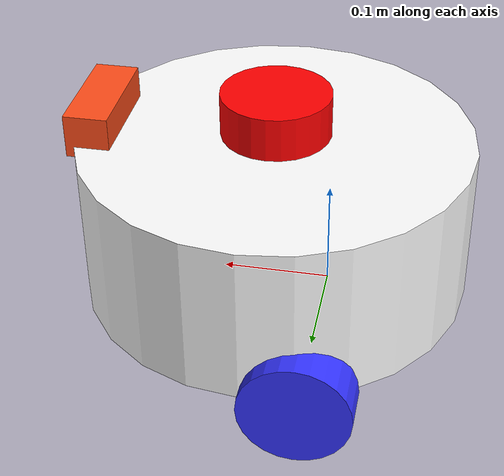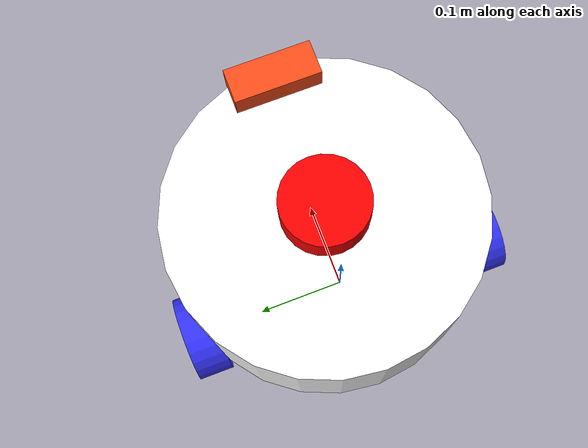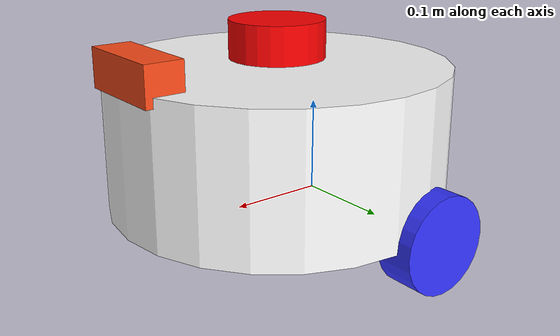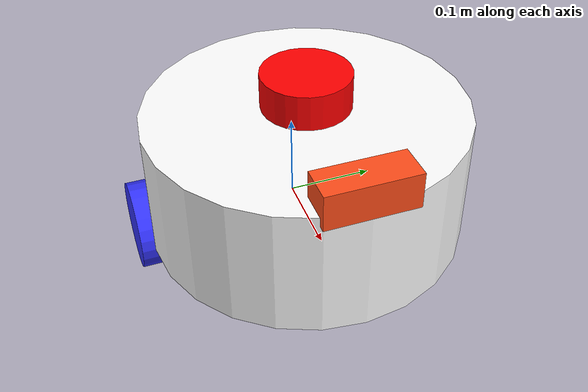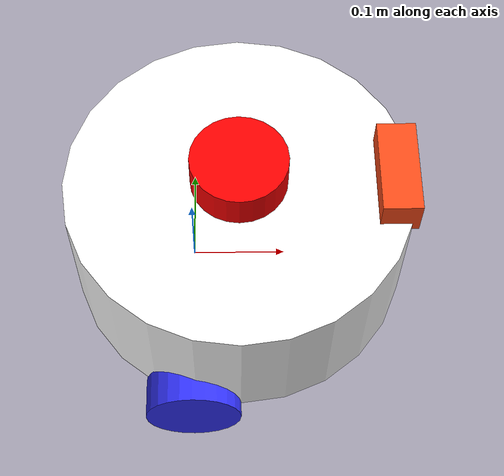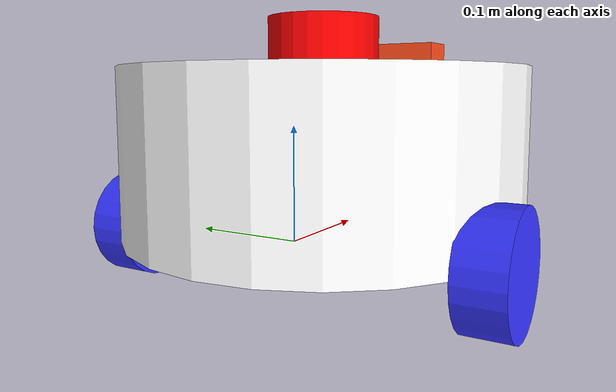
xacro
<?xml version="1.0"?>
<robot xmlns:xacro="http://www.ros.org/wiki/xacro"  name="robot">

    <xacro:include filename="robot_core.xacro" />
    <xacro:include filename="lidar.xacro" />
    <xacro:include filename="imu.xacro" />
    <xacro:include filename="ultrasonic.xacro" />

    <!-- Instantiate sensors that are defined as macros -->
    <!-- Front-facing ultrasonic (HC-SR04). Pose is relative to chassis. -->
    <xacro:ultrasonic_sensor parent_link="chassis" xyz="0.30 0 0.03" rpy="0 0 0" />

</robot>

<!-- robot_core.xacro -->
<robot xmlns:xacro="http://www.ros.org/wiki/xacro" >

    <xacro:include filename="inertial_macros.xacro"/>

    <material name="white">
        <color rgba="1 1 1 1" />
    </material>

    <material name="orange">
        <color rgba="1 0.3 0.1 1"/>
    </material>

    <material name="blue">
        <color rgba="0.2 0.2 1 1"/>
    </material>

    <material name="black">
        <color rgba="0 0 0 1"/>
    </material>

    <material name="red">
        <color rgba="1 0 0 1"/>
    </material>

    <!-- BASE LINK -->

    <link name="base_link">

    </link>

    <!-- CHASSIS LINK -->

    <joint name="chassis_joint" type="fixed">
        <parent link="base_link"/>
        <child link="chassis"/>
        <origin xyz="-0.1 0 0"/>
    </joint>

    <link name="chassis">
        <visual>
            <origin xyz="0.15 0 0.075" rpy="0 0 0"/>
            <geometry>
                <cylinder radius="0.18" length="0.15"/>
            </geometry>
            <material name="white"/>
        </visual>
        <collision>
            <origin xyz="0.15 0 0.075" rpy="0 0 0"/>
            <geometry>
                <cylinder radius="0.18" length="0.15"/>
            </geometry>
        </collision>
        <xacro:inertial_cylinder mass="0.5" length="0.15" radius="0.18">
            <origin xyz="0.15 0 0.075" rpy="0 0 0"/>
        </xacro:inertial_cylinder>
    </link>

    <!-- FRONT INDICATOR -->
    <joint name="front_indicator_joint" type="fixed">
        <parent link="chassis"/>
        <child link="front_indicator"/>
        <origin xyz="0.31 0 0.16" rpy="0 0 0"/>
    </joint>
    <link name="front_indicator">
        <visual>
            <geometry>
                <box size="0.04 0.1 0.04"/>
            </geometry>
            <material name="orange"/>
        </visual>
    </link>
    <gazebo reference="front_indicator">
        <material>Gazebo/Orange</material>
    </gazebo>

    <gazebo reference="chassis">
        <material>Gazebo/White</material>
    </gazebo>

    <!-- LEFT WHEEL LINK -->

    <joint name="left_wheel_joint" type="continuous">
        <parent link="base_link"/>
        <child link="left_wheel"/>
        <origin xyz="0 0.175 0" rpy="-${pi/2} 0 0" />
        <axis xyz="0 0 1"/>
    </joint>

    <link name="left_wheel">
        <visual>
            <geometry>
                <cylinder radius="0.05" length="0.04"/>
            </geometry>
            <material name="blue"/>
        </visual>
        <collision>
            <geometry>
                <cylinder radius="0.05" length="0.04"/>
            </geometry>
        </collision>
        <xacro:inertial_cylinder mass="0.1" length="0.04" radius="0.05">
            <origin xyz="0 0 0" rpy="0 0 0"/>
        </xacro:inertial_cylinder>
    </link>

    <gazebo reference="left_wheel">
        <material>Gazebo/Blue</material>
    </gazebo>

    <!-- RIGHT WHEEL LINK -->

    <joint name="right_wheel_joint" type="continuous">
        <parent link="base_link"/>
        <child link="right_wheel"/>
        <origin xyz="0 -0.175 0" rpy="${pi/2} 0 0" />
        <axis xyz="0 0 -1"/>
    </joint>

    <link name="right_wheel">
        <visual>
            <geometry>
                <cylinder radius="0.05" length="0.04"/>
            </geometry>
            <material name="blue"/>
        </visual>
        <collision>
            <geometry>
                <cylinder radius="0.05" length="0.04"/>
            </geometry>
        </collision>
        <xacro:inertial_cylinder mass="0.1" length="0.04" radius="0.05">
            <origin xyz="0 0 0" rpy="0 0 0"/>
        </xacro:inertial_cylinder>
    </link>

    <gazebo reference="right_wheel">
        <material>Gazebo/Blue</material>
    </gazebo>

    <!-- CASTER WHEEL LINK -->

    <joint name="caster_wheel_joint" type="fixed">
        <parent link="chassis"/>
        <child link="caster_wheel"/>
        <origin xyz="0.24 0 0"/>
    </joint>

    <link name="caster_wheel">
        <visual>
            <geometry>
                <sphere radius="0.05"/>
            </geometry>
            <material name="black"/>
        </visual>
        <collision>
            <geometry>
                <sphere radius="0.05"/>
            </geometry>
        </collision>
        <xacro:inertial_sphere mass="0.1" radius="0.05">
            <origin xyz="0 0 0" rpy="0 0 0"/>
        </xacro:inertial_sphere>
    </link>

    <gazebo reference="caster_wheel">
        <material>Gazebo/Black</material>
        <mu1 value="0.001"/>
        <mu2 value="0.001"/>
    </gazebo>

</robot>

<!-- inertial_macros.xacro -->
<robot xmlns:xacro="http://www.ros.org/wiki/xacro" >

    <!-- Specify some standard inertial calculations https://en.wikipedia.org/wiki/List_of_moments_of_inertia -->
    <!-- These make use of xacro's mathematical functionality -->

    <xacro:macro name="inertial_sphere" params="mass radius *origin">
        <inertial>
            <xacro:insert_block name="origin"/>
            <mass value="${mass}" />
            <inertia ixx="${(2/5) * mass * (radius*radius)}" ixy="0.0" ixz="0.0"
                    iyy="${(2/5) * mass * (radius*radius)}" iyz="0.0"
                    izz="${(2/5) * mass * (radius*radius)}" />
        </inertial>
    </xacro:macro>

    <xacro:macro name="inertial_box" params="mass x y z *origin">
        <inertial>
            <xacro:insert_block name="origin"/>
            <mass value="${mass}" />
            <inertia ixx="${(1/12) * mass * (y*y + z*z)}" ixy="0.0" ixz="0.0"
                    iyy="${(1/12) * mass * (x*x + z*z)}" iyz="0.0"
                    izz="${(1/12) * mass * (x*x + y*y)}" />
        </inertial>
    </xacro:macro>

    <xacro:macro name="inertial_cylinder" params="mass length radius *origin">
        <inertial>
            <xacro:insert_block name="origin"/>
            <mass value="${mass}" />
            <inertia ixx="${(1/12) * mass * (3*radius*radius + length*length)}" ixy="0.0" ixz="0.0"
                    iyy="${(1/12) * mass * (3*radius*radius + length*length)}" iyz="0.0"
                    izz="${(1/2) * mass * (radius*radius)}" />
        </inertial>
    </xacro:macro>

</robot>

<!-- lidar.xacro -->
<robot xmlns:xacro="http://www.ros.org/wiki/xacro" >

    <joint name="laser_joint" type="fixed">
        <parent link="chassis"/>
        <child link="laser"/>
        <!-- RPLIDAR A1 mounted with USB port facing BACK (physically rotated 180°) -->
        <!-- The TF must match physical orientation! -->
        <origin xyz="0.15 0 0.175" rpy="0 0 3.14159"/>
    </joint>

    <link name="laser">
        <visual>
            <geometry>
                <cylinder radius="0.05" length="0.04"/>
            </geometry>
            <material name="red"/>
        </visual>
        <collision>
            <geometry>
                <cylinder radius="0.05" length="0.04"/>
            </geometry>
        </collision>
        <xacro:inertial_cylinder mass="0.1" length="0.04" radius="0.05">
            <origin xyz="0 0 0" rpy="0 0 0"/>
        </xacro:inertial_cylinder>
    </link>

    <gazebo reference="laser">
        <material>Gazebo/Red</material>

        <sensor name="laser" type="ray">
            <pose> 0 0 0 0 0 0 </pose>
            <visualize>true</visualize>
            <update_rate>10</update_rate>
            <ray>
                <scan>
                    <horizontal>
                        <samples>360</samples>
                        <min_angle>-3.14</min_angle>
                        <max_angle>3.14</max_angle>
                    </horizontal>
                </scan>
                <range>
                    <min>0.3</min>
                    <max>12</max>
                </range>
            </ray>
            <plugin name="laser_controller" filename="libgazebo_ros_ray_sensor.so">
                <ros>
                    <argument>~/out:=scan</argument>
                </ros>
                <output_type>sensor_msgs/LaserScan</output_type>
                <frame_name>laser</frame_name>
            </plugin>
        </sensor>
    </gazebo>

</robot>

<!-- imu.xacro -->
<robot xmlns:xacro="http://www.ros.org/wiki/xacro" >

    <joint name="imu_joint" type="fixed">
        <parent link="chassis"/>
        <child link="imu_link"/>
        <origin xyz="0.15 0 0.075" rpy="0 0 0"/>
    </joint>

    <link name="imu_link">
        <visual>
            <geometry>
                <box size="0.05 0.05 0.05"/>
            </geometry>
            <material name="black"/>
        </visual>
        <collision>
            <geometry>
                <box size="0.05 0.05 0.05"/>
            </geometry>
        </collision>
        <xacro:inertial_box mass="0.01" x="0.05" y="0.05" z="0.05">
            <origin xyz="0 0 0" rpy="0 0 0"/>
        </xacro:inertial_box>
    </link>

    <gazebo reference="imu_link">
        <gravity>true</gravity>
        <sensor name="imu_sensor" type="imu">
            <always_on>true</always_on>
            <update_rate>100</update_rate>
            <visualize>true</visualize>
            <topic>__default_topic__</topic>
            <plugin filename="libgazebo_ros_imu_sensor.so" name="imu_plugin">
                <topicName>imu</topicName>
                <bodyName>imu_link</bodyName>
                <updateRateHZ>10.0</updateRateHZ>
                <gaussianNoise>0.0</gaussianNoise>
                <xyzOffset>0 0 0</xyzOffset>
                <rpyOffset>0 0 0</rpyOffset>
                <frameName>imu_link</frameName>
                <initialOrientationAsReference>false</initialOrientationAsReference>
            </plugin>
            <pose>0 0 0 0 0 0</pose>
        </sensor>
    </gazebo>

</robot>

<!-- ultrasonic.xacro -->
<robot xmlns:xacro="http://www.ros.org/wiki/xacro">
    <!-- Ultrasonic Sensor Macro -->
    <xacro:macro name="ultrasonic_sensor" params="parent_link xyz rpy">

        <link name="ultrasonic_link">
            <visual>
                <origin xyz="0 0 0" rpy="0 0 0"/>
                <geometry>
                    <box size="0.04 0.02 0.02"/>
                </geometry>
                <material name="blue">
                    <color rgba="0 0 1 1"/>
                </material>
            </visual>
            <collision>
                <origin xyz="0 0 0" rpy="0 0 0"/>
                <geometry>
                    <box size="0.04 0.02 0.02"/>
                </geometry>
            </collision>
            <inertial>
                <mass value="0.01"/>
                <origin xyz="0 0 0" rpy="0 0 0"/>
                <inertia ixx="1e-6" ixy="0" ixz="0" iyy="1e-6" iyz="0" izz="1e-6"/>
            </inertial>
        </link>

        <joint name="ultrasonic_joint" type="fixed">
            <parent link="${parent_link}"/>
            <child link="ultrasonic_link"/>
            <origin xyz="${xyz}" rpy="${rpy}"/>
        </joint>

        <!-- Gazebo simulation plugin (ignored on physical robot) -->
        <gazebo reference="ultrasonic_link">
            <sensor type="ray" name="ultrasonic_sensor">
                <pose>0 0 0 0 0 0</pose>
                <visualize>true</visualize>
                <update_rate>20</update_rate>
                <ray>
                    <scan>
                        <horizontal>
                            <samples>5</samples>
                            <resolution>1</resolution>
                            <min_angle>-0.13</min_angle>
                            <max_angle>0.13</max_angle>
                        </horizontal>
                        <vertical>
                            <samples>5</samples>
                            <resolution>1</resolution>
                            <min_angle>-0.05</min_angle>
                            <max_angle>0.05</max_angle>
                        </vertical>
                    </scan>
                    <range>
                        <min>0.03</min>
                        <max>4.0</max>
                        <resolution>0.01</resolution>
                    </range>
                </ray>
                <plugin name="ultrasonic_sensor_controller" filename="libgazebo_ros_ray_sensor.so">
                    <ros>
                        <remapping>~/out:=ultrasonic_range</remapping>
                    </ros>
                    <output_type>sensor_msgs/Range</output_type>
                    <radiation_type>ultrasound</radiation_type>
                    <frame_name>ultrasonic_link</frame_name>
                </plugin>
            </sensor>
        </gazebo>

    </xacro:macro>
</robot>
